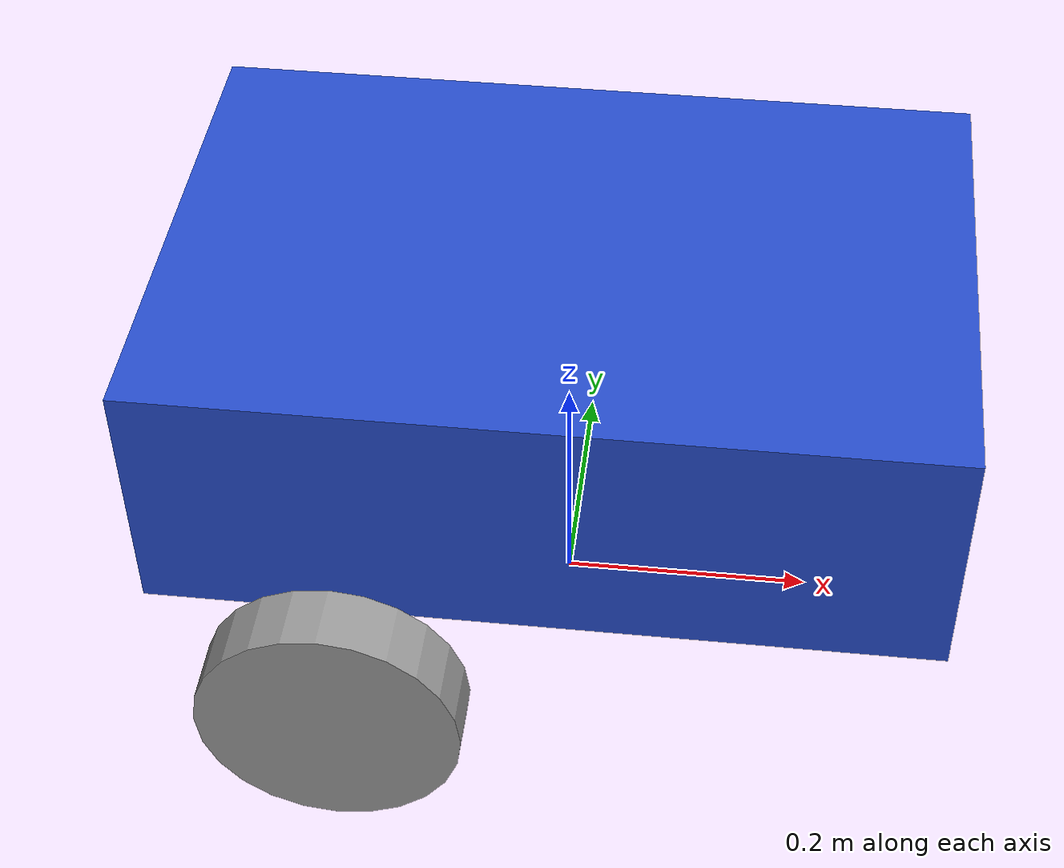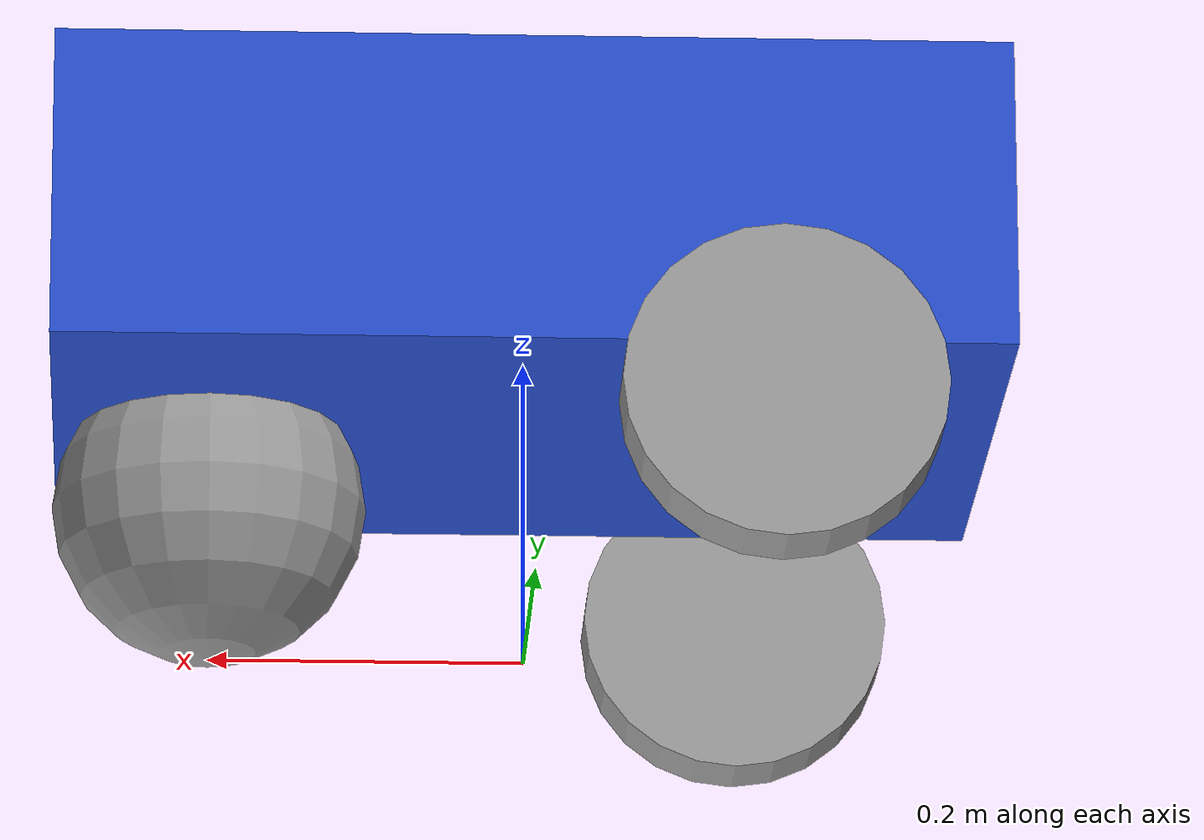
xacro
<?xml version="1.0"?>
<robot xmlns:xacro="http://www.ros.org/wiki/xacro">
<link name="base_footprint"/>
<joint name="base_joint" type="fixed"><parent link="base_footprint"/><child link="base_link"/><origin xyz="0 0 0.15"/></joint>
<link name="base_link">
<visual><origin xyz="0 0 0.1"/><geometry><box size="0.6 0.4 0.2"/></geometry><material name="blue"/></visual>
<collision><origin xyz="0 0 0.1"/><geometry><box size="0.6 0.4 0.2"/></geometry></collision>
<inertial><origin xyz="0 0 0.1"/><mass value="30.0"/><inertia ixx="1.0" ixy="0" ixz="0" iyy="1.0" iyz="0" izz="1.0"/></inertial>
</link>
<xacro:macro name="wheel" params="prefix y_reflect">
<link name="${prefix}_link">
<visual><origin xyz="0 0 0" rpy="${pi/2} 0 0"/><geometry><cylinder radius="0.1" length="0.05"/></geometry><material name="grey"/></visual>
<collision><origin xyz="0 0 0" rpy="${pi/2} 0 0"/><geometry><cylinder radius="0.1" length="0.05"/></geometry></collision>
<inertial><mass value="2.0"/><inertia ixx="0.1" ixy="0" ixz="0" iyy="0.1" iyz="0" izz="0.1"/></inertial>
</link>
<joint name="${prefix}_joint" type="continuous"><parent link="base_link"/><child link="${prefix}_link"/><origin xyz="-0.15 ${y_reflect*0.25} -0.05" rpy="0 0 0"/><axis xyz="0 1 0"/></joint>
</xacro:macro>
<xacro:wheel prefix="drivewhl_l" y_reflect="1"/>
<xacro:wheel prefix="drivewhl_r" y_reflect="-1"/>
<link name="caster">
<visual><geometry><sphere radius="0.1"/></geometry><material name="grey"/></visual>
<collision><geometry><sphere radius="0.1"/></geometry></collision>
<inertial><mass value="1.0"/><inertia ixx="0.1" ixy="0" ixz="0" iyy="0.1" iyz="0" izz="0.1"/></inertial>
</link>
<joint name="caster_joint" type="fixed"><parent link="base_link"/><child link="caster"/><origin xyz="0.2 0 -0.05"/></joint>
<gazebo reference="base_link"><self_collide>false</self_collide></gazebo>
<gazebo reference="caster"><mu1>0.01</mu1><mu2>0.01</mu2></gazebo>
</robot>
